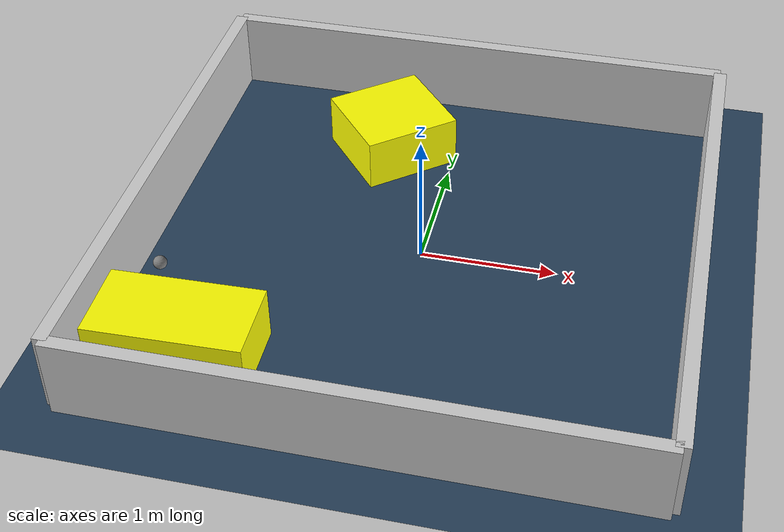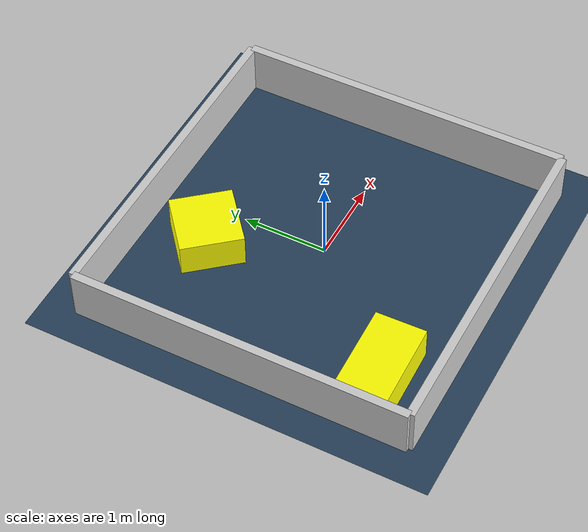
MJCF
<?xml version="1.0" ?>
<mujoco model="generated_environment">
  <option timestep="0.01" integrator="RK4" cone="elliptic"/>
  <default>
    <geom density="1"/>
  </default>
  <asset>
    <texture builtin="gradient" height="3072" rgb1="0.3 0.5 0.7" rgb2="0 0 0" type="skybox" width="512"/>
    <texture builtin="checker" height="300" mark="edge" markrgb="0.8 0.8 0.8" name="groundplane" rgb1="0.2 0.3 0.4" rgb2="0.1 0.2 0.3" type="2d" width="300"/>
    <material name="groundplane" reflectance="0.2" texrepeat="5 5" texture="groundplane" texuniform="true"/>
    <material name="robot" rgba="0.0 1.0 0.0 1"/>
  </asset>
  <worldbody>
    <light dir="0 0 -1" directional="true" pos="0 0 1.5"/>
    <geom condim="4" friction="1.0 0.005 0.001" material="groundplane" name="floor" size="0 0 0.05" type="plane"/>
    <body name="walls">
      <geom name="wall_1" condim="4" pos="-2.0 0.0 0.3" rgba="0.800000011920929 0.800000011920929 0.800000011920929 1.0" size="0.05 2.0 0.3" type="box"/>
      <geom name="wall_2" condim="4" pos="2.0 0.0 0.3" rgba="0.800000011920929 0.800000011920929 0.800000011920929 1.0" size="0.05 2.0 0.3" type="box"/>
      <geom name="wall_3" condim="4" pos="0.0 -2.0 0.3" rgba="0.800000011920929 0.800000011920929 0.800000011920929 1.0" size="2.0 0.05 0.3" type="box"/>
      <geom name="wall_4" condim="4" pos="0.0 2.0 0.3" rgba="0.800000011920929 0.800000011920929 0.800000011920929 1.0" size="2.0 0.05 0.3" type="box"/>
    </body>
    <body name="robot">
      <joint name="joint_x" type="slide" pos="0 0 0" axis="1 0 0"/>
      <joint name="joint_y" type="slide" pos="0 0 0" axis="0 1 0"/>
      <geom name="robot" type="sphere" pos="-1.7409324453182948 -0.7181985002704918 0.2" size="0.05" mass="5." friction="1.0 0.005 0.0001" condim="4"/>
      <site name="sensor_ball"/>
    </body>
    <body name="obstacle_1_movable">
      <geom name="obstacle_1_movable" condim="4" pos="-0.5036958310770312 1.220946482939412 0.2" euler="0 0 219.82506632141292" friction="1.0 0.005 0.001" rgba="1 1 0 1" size="0.3780137769471363 0.36501040489426023 0.2" type="box" mass="0.1"/>
      <joint type="free"/>
    </body>
    <body name="obstacle_2_movable">
      <geom name="obstacle_2_movable" condim="4" pos="-1.372254476606938 -1.3555794880162262 0.2" euler="0 0 1.3983968175327588" friction="1.0 0.005 0.001" rgba="1 1 0 1" size="0.5536331976567241 0.2992646686744275 0.2" type="box" mass="0.1"/>
      <joint type="free"/>
    </body>
  </worldbody>
  <actuator>
    <motor name="actuator_x" joint="joint_x" gear="1" ctrlrange="-1 1"/>
    <motor name="actuator_y" joint="joint_y" gear="1" ctrlrange="-1 1"/>
  </actuator>
</mujoco>
